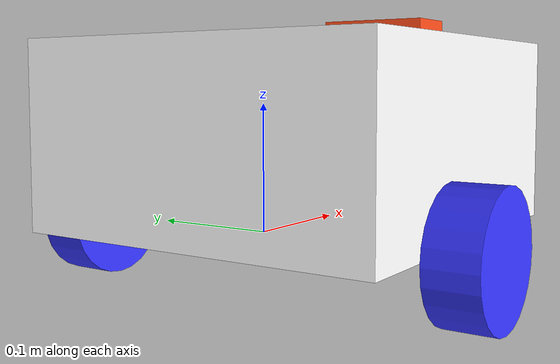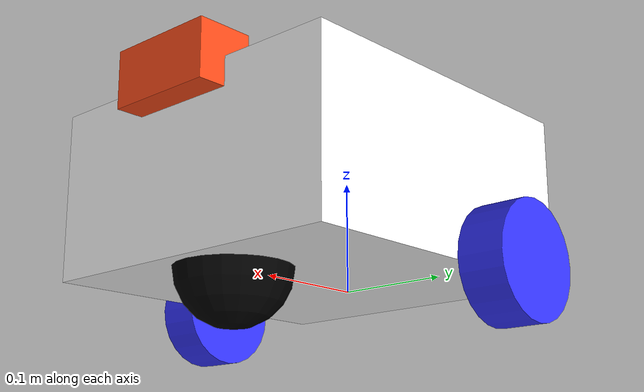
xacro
<?xml version="1.0"?>
<robot xmlns:xacro="http://www.ros.org/wiki/xacro"  name="imre_robot">

    <material name="white"><color rgba="1 1 1 1" /></material>
    <material name="orange"><color rgba="1 0.3 0.1 1"/></material>
    <material name="blue"><color rgba="0.2 0.2 1 1"/></material>
    <material name="black"><color rgba="0 0 0 1"/></material>

    <link name="base_link"></link>

    <link name="chassis">
        <visual>
            <origin xyz="0.15 0 0.075"/>
            <geometry><box size="0.3 0.3 0.15"/></geometry>
            <material name="white"/>
        </visual>
        <collision>
            <origin xyz="0.15 0 0.075"/>
            <geometry><box size="0.3 0.3 0.15"/></geometry>
        </collision>
        <inertial>
            <origin xyz="0.15 0 0.075" rpy="0 0 0"/>
            <mass value="2.0" />
            <inertia ixx="0.01" ixy="0.0" ixz="0.0" iyy="0.01" iyz="0.0" izz="0.01" />
        </inertial>
    </link>

    <joint name="chassis_joint" type="fixed">
        <parent link="base_link"/>
        <child link="chassis"/>
        <origin xyz="-0.1 0 0"/>
    </joint>

    <joint name="left_wheel_joint" type="continuous">
        <parent link="base_link"/>
        <child link="left_wheel"/>
        <origin xyz="0 0.175 0" rpy="-1.5708 0 0"/>
        <axis xyz="0 0 1"/>
    </joint>
    <link name="left_wheel">
        <visual><geometry><cylinder radius="0.05" length="0.04"/></geometry><material name="blue"/></visual>
        <collision><geometry><cylinder radius="0.05" length="0.04"/></geometry></collision>
        <inertial><mass value="0.5"/><inertia ixx="0.001" ixy="0" ixz="0" iyy="0.001" iyz="0" izz="0.001"/></inertial>
    </link>

    <joint name="right_wheel_joint" type="continuous">
        <parent link="base_link"/>
        <child link="right_wheel"/>
        <origin xyz="0 -0.175 0" rpy="1.5708 0 0"/>
        <axis xyz="0 0 -1"/>
    </joint>
    <link name="right_wheel">
        <visual><geometry><cylinder radius="0.05" length="0.04"/></geometry><material name="blue"/></visual>
        <collision><geometry><cylinder radius="0.05" length="0.04"/></geometry></collision>
        <inertial><mass value="0.5"/><inertia ixx="0.001" ixy="0" ixz="0" iyy="0.001" iyz="0" izz="0.001"/></inertial>
    </link>

    <joint name="caster_wheel_joint" type="fixed">
        <parent link="chassis"/>
        <child link="caster_wheel"/>
        <origin xyz="0.24 0 0"/>
    </joint>
    <link name="caster_wheel">
        <visual><geometry><sphere radius="0.05"/></geometry><material name="black"/></visual>
        <collision><geometry><sphere radius="0.05"/></geometry></collision>
        <inertial><mass value="0.1"/><inertia ixx="0.0001" ixy="0" ixz="0" iyy="0.0001" iyz="0" izz="0.0001"/></inertial>
    </link>

    <joint name="camera_joint" type="revolute">
        <parent link="chassis"/>
        <child link="camera_link"/>
        <origin xyz="0.3 0 0.15" rpy="0 0 0"/>

        <axis xyz="0 1 0"/>

        <limit lower="0.0" upper="1.0" effort="20.0" velocity="2.0"/>
        <dynamics damping="0.0" friction="0.0"/>
    </joint>

    <link name="camera_link">
        <visual>
            <geometry><box size="0.05 0.10 0.05"/></geometry>
            <material name="orange"/>
        </visual>
        <collision><geometry><box size="0.05 0.10 0.05"/></geometry></collision>
        <inertial><mass value="0.05"/><inertia ixx="0.0001" ixy="0" ixz="0" iyy="0.0001" iyz="0" izz="0.0001"/></inertial>
    </link>

    <joint name="camera_optical_joint" type="fixed">
        <parent link="camera_link"/>
        <child link="camera_link_optical"/>
        <origin xyz="0 0 0" rpy="-1.5708 0 -1.5708"/>
    </joint>
    <link name="camera_link_optical"></link>

    <gazebo>
        <plugin name="diff_drive" filename="libgazebo_ros_diff_drive.so">
            <left_joint>left_wheel_joint</left_joint>
            <right_joint>right_wheel_joint</right_joint>
            <wheel_separation>0.35</wheel_separation>
            <wheel_diameter>0.1</wheel_diameter>
            <max_wheel_torque>200</max_wheel_torque>
            <max_wheel_acceleration>10.0</max_wheel_acceleration>
            <odometry_frame>odom</odometry_frame>
            <robot_base_frame>base_link</robot_base_frame>
            <publish_odom>true</publish_odom>
            <publish_odom_tf>true</publish_odom_tf>
            <publish_wheel_tf>true</publish_wheel_tf>
        </plugin>
    </gazebo>

    <gazebo reference="camera_link">
        <material>Gazebo/Orange</material>
        <sensor name="camera" type="camera">
            <pose> 0 0 0 0 0 0 </pose>
            <visualize>true</visualize>
            <update_rate>10</update_rate>
            <camera>
                <horizontal_fov>1.089</horizontal_fov>
                <image><format>R8G8B8</format><width>640</width><height>480</height></image>
                <clip><near>0.05</near><far>8.0</far></clip>
            </camera>
            <plugin name="camera_controller" filename="libgazebo_ros_camera.so">
                <frame_name>camera_link_optical</frame_name>
            </plugin>
        </sensor>
    </gazebo>

    <ros2_control name="GazeboSystem" type="system">
        <hardware><plugin>gazebo_ros2_control/GazeboSystem</plugin></hardware>
        <joint name="left_wheel_joint">
            <command_interface name="velocity"><param name="min">-10</param><param name="max">10</param></command_interface>
            <state_interface name="velocity"/><state_interface name="position"/>
        </joint>
        <joint name="right_wheel_joint">
            <command_interface name="velocity"><param name="min">-10</param><param name="max">10</param></command_interface>
            <state_interface name="velocity"/><state_interface name="position"/>
        </joint>
        <joint name="camera_joint">
    <command_interface name="position">
        <param name="min">0.0</param>
        <param name="max">1.0</param>
    </command_interface>
    <state_interface name="velocity"/>
    <state_interface name="position"/>
</joint>
    </ros2_control>

    <gazebo>
        <plugin name="gazebo_ros2_control" filename="libgazebo_ros2_control.so">
            <parameters>$(find imre_description)/config/my_controllers.yaml</parameters>
        </plugin>
    </gazebo>
</robot>
